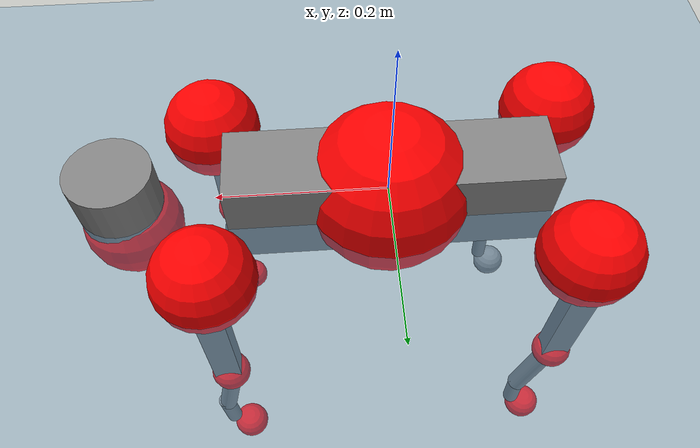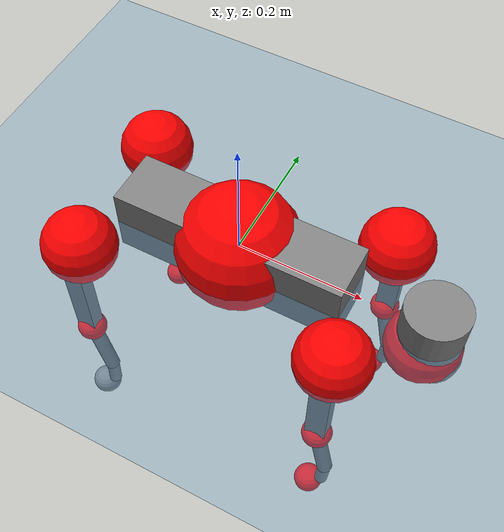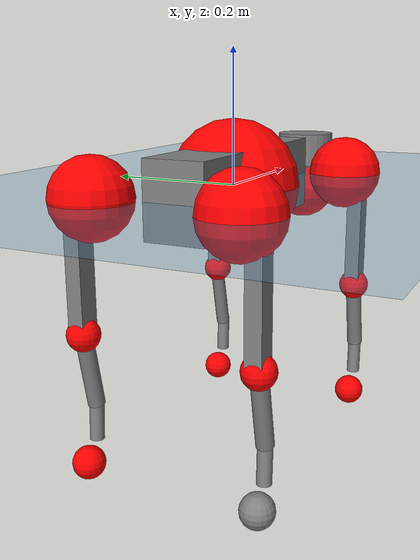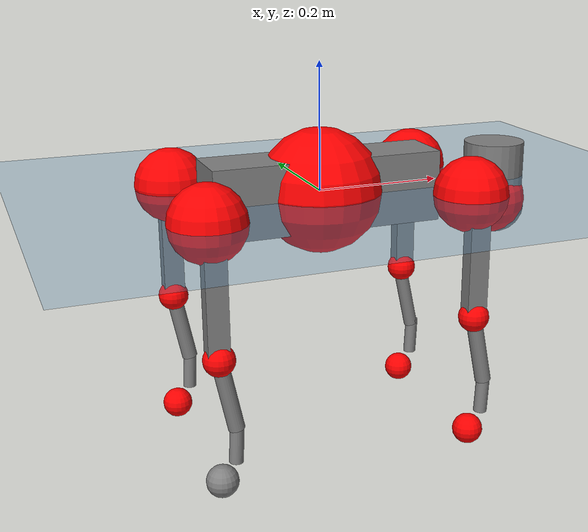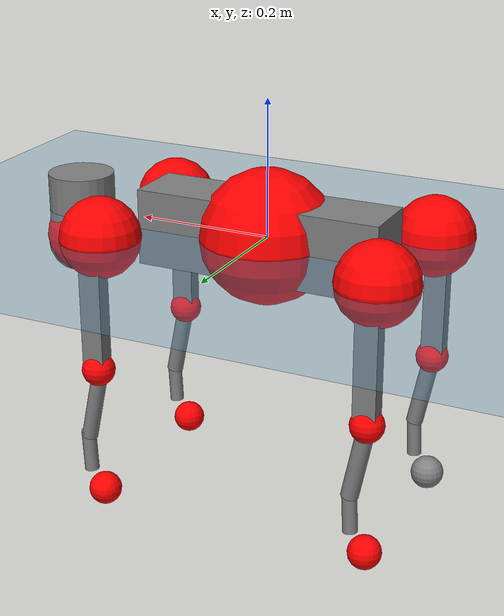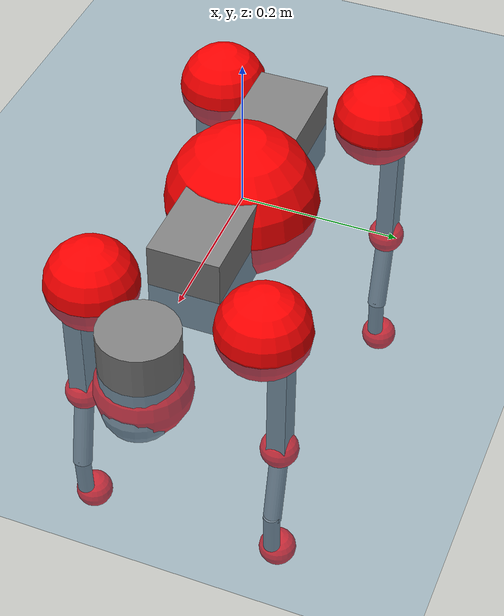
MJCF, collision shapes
<mujoco model="go2">
  <compiler angle="radian" assetdir="assets" balanceinertia="true" inertiafromgeom="false"/>

  <option timestep="0.005" density="1.2" viscosity="2e-05"/>

  <size nkey="1"/>

  <visual>
    <quality shadowsize="8192"/>
    <map shadowclip="0.5"/>
  </visual>

  <default>
    <default class="/">
      <geom contype="0" conaffinity="0" group="1" solref="-1000 -80"/>
      <site size="0.01 0.005 0.005" group="5"/>
      <general forcelimited="true" biastype="affine" gainprm="20" biasprm="0 -20 -0.5"/>
      <default class="go2">
        <joint armature="0.01" damping="0.01" frictionloss="0.2"/>
        <geom condim="1" margin="0.001"/>
        <default class="visual">
          <geom type="mesh" group="2"/>
        </default>
        <default class="collision">
          <geom group="3"/>
          <default class="foot">
            <geom size="0.022 0 0" condim="6" priority="1" friction="0.8 0.02 0.01" solimp="0.015 1 0.022"/>
          </default>
        </default>
        <default class="reward_collision_sphere">
          <geom group="5" rgba="1 0 0 1"/>
        </default>
      </default>
    </default>
  </default>

  <asset>
    <texture type="skybox" colorspace="auto" name="//unnamed_texture_0" builtin="gradient" rgb1="0.95 0.95 0.95" rgb2="0.95 0.95 0.95" width="100" height="600"/>
    <texture type="2d" colorspace="auto" name="texplane" builtin="checker" rgb1="0.345 0.575 0.748" rgb2="0.345 0.575 0.748" markrgb="1 1 1" width="512" height="512"/>
    <material name="MatPlane" class="/" texture="texplane" texuniform="true" texrepeat="2 2" specular="0.9"/>
    <material name="metal" class="/" rgba="0.9 0.95 0.95 1"/>
    <material name="black" class="/" rgba="0 0 0 1"/>
    <material name="white" class="/"/>
    <material name="gray" class="/" rgba="0.671705 0.692426 0.77427 1"/>
    <mesh name="base_0" class="/" file="base_0.obj"/>
    <mesh name="base_1" class="/" file="base_1.obj"/>
    <mesh name="base_2" class="/" file="base_2.obj"/>
    <mesh name="base_3" class="/" file="base_3.obj"/>
    <mesh name="base_4" class="/" file="base_4.obj"/>
    <mesh name="hip_0" class="/" file="hip_0.obj"/>
    <mesh name="hip_1" class="/" file="hip_1.obj"/>
    <mesh name="thigh_0" class="/" file="thigh_0.obj"/>
    <mesh name="thigh_1" class="/" file="thigh_1.obj"/>
    <mesh name="thigh_mirror_0" class="/" file="thigh_mirror_0.obj"/>
    <mesh name="thigh_mirror_1" class="/" file="thigh_mirror_1.obj"/>
    <mesh name="calf_0" class="/" file="calf_0.obj"/>
    <mesh name="calf_1" class="/" file="calf_1.obj"/>
    <mesh name="calf_mirror_0" class="/" file="calf_mirror_0.obj"/>
    <mesh name="calf_mirror_1" class="/" file="calf_mirror_1.obj"/>
    <mesh name="foot" class="/" file="foot.obj"/>
  </asset>

  <worldbody>
    <geom name="floor" class="/" size="100 100 0.125" type="plane" group="0" material="MatPlane"/>
    <light name="toplight_shadow" class="/" pos="0 0 5" dir="0.0990148 0.0990148 -0.990148" type="directional" ambient="0.04 0.04 0.04" diffuse="0.55 0.55 0.55" specular="0.12 0.12 0.12"/>
    <light name="toplight_fill" class="/" pos="0 0 5" dir="0.0990148 0.0990148 -0.990148" type="directional" castshadow="false" ambient="0.04 0.04 0.04" diffuse="0.3 0.3 0.3" specular="0.08 0.08 0.08"/>
    <body name="trunk" childclass="go2" pos="0.000262332 -0.000654142 0.00104202" quat="1 0.000340491 2.65135e-05 -3.61329e-05">
      <inertial pos="0.0229215 -0.00242528 -0.00390499" quat="-0.000538676 0.713016 -0.00183185 0.701145" mass="6.36703" diaginertia="0.146413 0.0682334 0.0159355"/>
      <joint name="//unnamed_joint_0" type="free" armature="0" damping="0" frictionloss="0"/>
      <geom name="//unnamed_geom_1" class="visual" material="black" mesh="base_0"/>
      <geom name="//unnamed_geom_2" class="visual" material="black" mesh="base_1"/>
      <geom name="//unnamed_geom_3" class="visual" material="black" mesh="base_2"/>
      <geom name="//unnamed_geom_4" class="visual" material="white" mesh="base_3"/>
      <geom name="//unnamed_geom_5" class="visual" material="gray" mesh="base_4"/>
      <geom name="trunk_1" class="collision" size="0.183942 0.0457165 0.05574" type="box"/>
      <geom name="trunk_2" class="collision" size="0.0488947 0.0440052" pos="0.307215 0 0.00920014" type="cylinder"/>
      <geom name="trunk_3" class="collision" size="0.045961" pos="0.315839 0 -0.0552009"/>
      <geom name="//unnamed_geom_9" class="reward_collision_sphere" size="0.0977894"/>
      <geom name="//unnamed_geom_10" class="reward_collision_sphere" size="0.0586736" pos="0.301825 0 -0.0414006"/>
      <site name="imu" pos="-0.0297646 0.00253022 0.0414359" size="0.00977894"/>
      <camera name="track" pos="0 -1.87144 0" quat="0.707107 0.707107 0 0" mode="trackcom"/>
      <camera name="ego_camera" pos="0.33632 0 0.0414006" quat="-0.5 -0.5 0.5 0.5"/>
      <body name="FL_hip" pos="0.208148 0.0443526 0.000609657" quat="1 -3.2775e-05 -3.60838e-05 -5.07009e-05">
        <inertial pos="-0.00571205 0.000494197 0.000532942" quat="0.493705 0.491554 0.515152 0.499248" mass="0.629183" diaginertia="0.00126819 0.00042757 0.000312325"/>
        <joint name="FL_hip_joint" pos="0 0 0" axis="0.999994 0.0021886 0.00263859" stiffness="0.0152115" range="-1.04232 1.05634" armature="0.00943493" damping="0.0105666" frictionloss="0.198802"/>
        <geom name="//unnamed_geom_11" class="visual" material="metal" mesh="hip_0"/>
        <geom name="//unnamed_geom_12" class="visual" material="gray" mesh="hip_1"/>
        <geom name="//unnamed_geom_13" class="collision" size="0.0449831 0.0195579" pos="0 0.0748576 0" quat="0.707107 0.707107 0 0" type="cylinder"/>
        <geom name="//unnamed_geom_14" class="reward_collision_sphere" size="0.0586736" pos="0 0.0655004 0"/>
        <body name="FL_thigh" pos="0.000328037 0.0888645 0.000332402" quat="0.999999 -0.00122219 -0.000418535 -7.09609e-05">
          <inertial pos="-0.00474988 -0.0181768 -0.030409" quat="0.830461 0.0804697 -0.020342 0.550858" mass="1.0694" diaginertia="0.00840502 0.00430064 0.000576327"/>
          <joint name="FL_thigh_joint" pos="0 0 0" axis="-0.00780628 0.999945 -0.00707174" stiffness="0.00132934" range="-1.58255 3.44712" armature="0.0110066" damping="0.0064304" frictionloss="0.196228"/>
          <geom name="//unnamed_geom_15" class="visual" material="metal" mesh="thigh_0"/>
          <geom name="//unnamed_geom_16" class="visual" material="gray" mesh="thigh_1"/>
          <geom name="//unnamed_geom_17" class="collision" size="0.104146 0.0119792 0.0166242" pos="0 0 -0.0979815" quat="0.707107 0 0.707107 0" type="box"/>
          <body name="FL_calf" pos="-0.00143773 -0.000907704 -0.1955" quat="1 -5.91998e-05 -0.000227834 -0.000341341">
            <inertial pos="0.00483706 -0.000768279 -0.131053" quat="0.707609 0.003682 -0.00310399 0.706588" mass="0.221673" diaginertia="0.00215564 0.00107417 3.46587e-05"/>
            <joint name="FL_calf_joint" pos="0 0 0" axis="-0.00280821 0.999983 0.00514202" stiffness="0.00665291" range="-2.67404 -0.805603" armature="0.00984336" damping="0" frictionloss="0.185526"/>
            <geom name="//unnamed_geom_18" class="visual" material="gray" mesh="calf_0"/>
            <geom name="//unnamed_geom_19" class="visual" material="black" mesh="calf_1"/>
            <geom name="FL_calf0" class="collision" size="0.0117347 0.0586736" pos="0.00862358 0 -0.0552009" quat="0.994493 0 -0.104807 0" type="cylinder"/>
            <geom name="//unnamed_geom_21" class="collision" size="0.0107568 0.0317816" pos="0.021559 0 -0.136162" quat="0.999688 0 0.0249974 0" type="cylinder"/>
            <geom name="//unnamed_geom_22" class="visual" pos="0 0 -0.195963" quat="1 0 0 0" material="black" mesh="foot"/>
            <geom name="FL_foot" class="foot" size="0.0178639" pos="-0.0021559 0 -0.195963"/>
            <geom name="//unnamed_geom_24" class="reward_collision_sphere" size="0.0244473"/>
            <geom name="//unnamed_geom_25" class="reward_collision_sphere" size="0.0244473" pos="-0.0021559 0 -0.195963"/>
            <site name="FL_foot" class="foot" pos="-0.0021559 0 -0.195963" size="0.00977894"/>
          </body>
        </body>
      </body>
      <body name="FR_hip" pos="0.206383 -0.0425418 -0.00123607" quat="1 1.11085e-05 -1.69716e-06 6.70113e-05">
        <inertial pos="-0.00609705 -0.0027048 0.000739612" quat="0.498096 0.51409 0.493745 0.493789" mass="0.640203" diaginertia="0.00126901 0.000427217 0.000311636"/>
        <joint name="FR_hip_joint" pos="0 0 0" axis="0.999999 0.000615718 0.000933105" range="-1.04615 1.0867" armature="0.0101156" damping="0.0130938" frictionloss="0.185836"/>
        <geom name="//unnamed_geom_26" class="visual" pos="0 1.36818e-10 5.86841e-09" quat="4.63268e-05 1 0 0" material="metal" mesh="hip_0"/>
        <geom name="//unnamed_geom_27" class="visual" pos="0 2.21799e-10 -1.45148e-08" quat="4.63268e-05 1 0 0" material="gray" mesh="hip_1"/>
        <geom name="//unnamed_geom_28" class="collision" size="0.0449831 0.0195579" pos="0 -0.0748576 0" quat="0.707107 0.707107 0 0" type="cylinder"/>
        <geom name="//unnamed_geom_29" class="reward_collision_sphere" size="0.0586736" pos="0 -0.0655004 0"/>
        <body name="FR_thigh" pos="0.000651176 -0.0890883 -0.000161997" quat="1 2.26905e-05 0.000237433 2.608e-05">
          <inertial pos="-0.00421537 0.020567 -0.0277093" quat="0.548677 -0.0199893 0.0885783 0.831088" mass="1.06087" diaginertia="0.00856624 0.00417705 0.000577468"/>
          <joint name="FR_thigh_joint" pos="0 0 0" axis="0.0043734 -0.999987 -0.00250532" stiffness="0.011422" range="-3.49613 1.54993" armature="0.00882954" damping="0.0218078" frictionloss="0.192633"/>
          <geom name="//unnamed_geom_30" class="visual" material="metal" mesh="thigh_mirror_0"/>
          <geom name="//unnamed_geom_31" class="visual" material="gray" mesh="thigh_mirror_1"/>
          <geom name="//unnamed_geom_32" class="collision" size="0.104146 0.0119792 0.0166242" pos="0 0 -0.0979815" quat="0.707107 0 0.707107 0" type="box"/>
          <body name="FR_calf" pos="0.000514657 -5.32846e-05 -0.193302" quat="1 -0.000251592 -0.000130106 -0.00016817">
            <inertial pos="0.0064125 0.00137697 -0.130468" quat="0.702515 -0.00637516 0.00490826 0.711623" mass="0.232987" diaginertia="0.00226277 0.00109516 3.60228e-05"/>
            <joint name="FR_calf_joint" pos="0 0 0" axis="-0.00325204 -0.999981 -0.00530084" range="0.815662 2.70338" armature="0.00984501" damping="0" frictionloss="0.205248"/>
            <geom name="//unnamed_geom_33" class="visual" material="gray" mesh="calf_mirror_0"/>
            <geom name="//unnamed_geom_34" class="visual" material="black" mesh="calf_mirror_1"/>
            <geom name="FR_calf0" class="collision" size="0.0127126 0.0586736" pos="0.0107795 0 -0.0552009" quat="0.995004 0 -0.0998334 0" type="cylinder"/>
            <geom name="//unnamed_geom_36" class="collision" size="0.0107568 0.0317816" pos="0.021559 0 -0.136162" quat="0.999688 0 0.0249974 0" type="cylinder"/>
            <geom name="//unnamed_geom_37" class="visual" pos="0 0 -0.195963" quat="1 0 0 0" material="black" mesh="foot"/>
            <geom name="FR_foot" class="foot" size="0.0202719" pos="-0.0021559 0 -0.195963"/>
            <geom name="//unnamed_geom_39" class="reward_collision_sphere" size="0.0244473"/>
            <geom name="//unnamed_geom_40" class="reward_collision_sphere" size="0.0244473" pos="-0.0021559 0 -0.195963"/>
            <site name="FR_foot" class="foot" pos="-0.0021559 0 -0.195963" size="0.00977894"/>
          </body>
        </body>
      </body>
      <body name="RL_hip" pos="-0.209037 0.0430009 0.00204614" quat="1 -0.000411205 8.1105e-05 -0.000134389">
        <inertial pos="0.00522942 0.00253637 0.000549703" quat="0.502892 0.498644 0.499878 0.498573" mass="0.621015" diaginertia="0.00130976 0.000434855 0.000319971"/>
        <joint name="RL_hip_joint" pos="0 0 0" axis="-0.999837 -0.0178067 -0.00305167" stiffness="0.0106226" range="-1.01066 1.0664" armature="0.0101122" damping="0.014147" frictionloss="0.208559"/>
        <geom name="//unnamed_geom_41" class="visual" pos="-1.37585e-09 0 -2.69699e-07" quat="4.63268e-05 0 1 0" material="metal" mesh="hip_0"/>
        <geom name="//unnamed_geom_42" class="visual" pos="-2.23042e-09 0 -2.39185e-07" quat="4.63268e-05 0 1 0" material="gray" mesh="hip_1"/>
        <geom name="//unnamed_geom_43" class="collision" size="0.0449831 0.0195579" pos="0 0.0748576 0" quat="0.707107 0.707107 0 0" type="cylinder"/>
        <geom name="//unnamed_geom_44" class="reward_collision_sphere" size="0.0586736" pos="0 0.0655004 0"/>
        <body name="RL_thigh" pos="-0.000163086 0.0899713 0.00124763" quat="0.999999 0.000179949 0.00110925 0.00024367">
          <inertial pos="-0.00404891 -0.0180585 -0.0310243" quat="0.827507 0.0832957 -0.0151661 0.555035" mass="1.04608" diaginertia="0.00868954 0.00419733 0.000595085"/>
          <joint name="RL_thigh_joint" pos="0 0 0" axis="-0.00505916 0.99995 -0.00857818" stiffness="0.00424102" range="-0.527016 4.53444" armature="0.010053" damping="0.016543" frictionloss="0.196322"/>
          <geom name="//unnamed_geom_45" class="visual" material="metal" mesh="thigh_0"/>
          <geom name="//unnamed_geom_46" class="visual" material="gray" mesh="thigh_1"/>
          <geom name="//unnamed_geom_47" class="collision" size="0.104146 0.0119792 0.0166242" pos="0 0 -0.0979815" quat="0.707107 0 0.707107 0" type="box"/>
          <body name="RL_calf" pos="-0.00078107 -0.00104044 -0.194615" quat="1 1.38007e-05 4.6105e-06 -5.03223e-06">
            <inertial pos="0.00689898 0.00131058 -0.130296" quat="0.712127 0.00304653 -0.00358341 0.702035" mass="0.228067" diaginertia="0.00213697 0.00103292 3.43331e-05"/>
            <joint name="RL_calf_joint" pos="0 0 0" axis="0.00482483 0.999903 -0.0130804" stiffness="0.00989759" range="-2.67237 -0.843185" armature="0.0110094" damping="0.000771417" frictionloss="0.191212"/>
            <geom name="//unnamed_geom_48" class="visual" material="gray" mesh="calf_0"/>
            <geom name="//unnamed_geom_49" class="visual" material="black" mesh="calf_1"/>
            <geom name="RL_calf0" class="collision" size="0.0127126 0.0586736" pos="0.0107795 0 -0.0552009" quat="0.995004 0 -0.0998334 0" type="cylinder"/>
            <geom name="//unnamed_geom_51" class="collision" size="0.0107568 0.0317816" pos="0.021559 0 -0.136162" quat="0.999688 0 0.0249974 0" type="cylinder"/>
            <geom name="//unnamed_geom_52" class="visual" pos="0 0 -0.195963" quat="1 0 0 0" material="black" mesh="foot"/>
            <geom name="RL_foot" class="foot" size="0.0194338" pos="-0.0021559 0 -0.195963"/>
            <geom name="//unnamed_geom_54" class="reward_collision_sphere" size="0.0244473"/>
            <geom name="//unnamed_geom_55" class="reward_collision_sphere" size="0.0244473" pos="-0.0021559 0 -0.195963"/>
            <site name="RL_foot" class="foot" pos="-0.0021559 0 -0.195963" size="0.00977894"/>
          </body>
        </body>
      </body>
      <body name="RR_hip" pos="-0.210672 -0.0445168 -0.00197291" quat="0.999999 -0.000733254 -0.00018449 0.00102427">
        <inertial pos="0.00621846 -0.000866223 -0.000414989" quat="0.498313 0.496268 0.498919 0.50644" mass="0.637768" diaginertia="0.00129472 0.000424148 0.000328187"/>
        <joint name="RR_hip_joint" pos="0 0 0" axis="-0.999998 -0.00168337 0.000611016" stiffness="0.00536218" range="-1.03771 1.06051" armature="0.0108526" damping="0.00721481" frictionloss="0.198231"/>
        <geom name="//unnamed_geom_56" class="visual" pos="1.37093e-09 1.36818e-10 -2.75567e-07" quat="2.14617e-09 4.63268e-05 4.63268e-05 -1" material="metal" mesh="hip_0"/>
        <geom name="//unnamed_geom_57" class="visual" pos="2.2426e-09 2.21799e-10 -2.2467e-07" quat="2.14617e-09 4.63268e-05 4.63268e-05 -1" material="gray" mesh="hip_1"/>
        <geom name="//unnamed_geom_58" class="collision" size="0.0449831 0.0195579" pos="0 -0.0748576 0" quat="0.707107 0.707107 0 0" type="cylinder"/>
        <geom name="//unnamed_geom_59" class="reward_collision_sphere" size="0.0586736" pos="0 -0.0655004 0"/>
        <body name="RR_thigh" pos="-4.8757e-05 -0.0885888 -0.000537044" quat="1 -2.41148e-05 -0.00043728 -0.000423562">
          <inertial pos="-0.00370976 0.0197535 -0.0303187" quat="0.551549 -0.0197472 0.0847488 0.829591" mass="1.05311" diaginertia="0.0085363 0.00420289 0.000569595"/>
          <joint name="RR_thigh_joint" pos="0 0 0" axis="-0.00436924 -0.999981 -0.00445076" stiffness="0.00467186" range="-4.52975 0.575416" armature="0.00858827" damping="0.0200226" frictionloss="0.190166"/>
          <geom name="//unnamed_geom_60" class="visual" material="metal" mesh="thigh_mirror_0"/>
          <geom name="//unnamed_geom_61" class="visual" material="gray" mesh="thigh_mirror_1"/>
          <geom name="//unnamed_geom_62" class="collision" size="0.104146 0.0119792 0.0166242" pos="0 0 -0.0979815" quat="0.707107 0 0.707107 0" type="box"/>
          <body name="RR_calf" pos="0.00194796 -0.000604847 -0.197072" quat="1 -2.52796e-06 6.25237e-05 0.000132271">
            <inertial pos="0.00681091 0.00100445 -0.130482" quat="0.703485 -0.00429329 0.00156543 0.710696" mass="0.227891" diaginertia="0.00214482 0.00104529 3.48762e-05"/>
            <joint name="RR_calf_joint" pos="0 0 0" axis="-0.000362194 -1 -0.000771684" range="0.878158 2.71635" armature="0.00947345" damping="0.0130255" frictionloss="0.194291"/>
            <geom name="//unnamed_geom_63" class="visual" material="gray" mesh="calf_mirror_0"/>
            <geom name="//unnamed_geom_64" class="visual" material="black" mesh="calf_mirror_1"/>
            <geom name="RR_calf0" class="collision" size="0.0127126 0.0586736" pos="0.0107795 0 -0.0552009" quat="0.995004 0 -0.0998334 0" type="cylinder"/>
            <geom name="//unnamed_geom_66" class="collision" size="0.0107568 0.0317816" pos="0.021559 0 -0.136162" quat="0.999688 0 0.0249974 0" type="cylinder"/>
            <geom name="//unnamed_geom_67" class="visual" pos="0 0 -0.195963" quat="1 0 0 0" material="black" mesh="foot"/>
            <geom name="RR_foot" class="foot" size="0.0250586" pos="-0.0021559 0 -0.195963"/>
            <geom name="//unnamed_geom_69" class="reward_collision_sphere" size="0.0244473"/>
            <geom name="//unnamed_geom_70" class="reward_collision_sphere" size="0.0244473" pos="-0.0021559 0 -0.195963"/>
            <site name="RR_foot" class="foot" pos="-0.0021559 0 -0.195963" size="0.00977894"/>
          </body>
        </body>
      </body>
    </body>
  </worldbody>

  <contact>
    <pair class="/" geom1="floor" geom2="FL_foot" name="//unnamed_contact_0"/>
    <pair class="/" geom1="floor" geom2="FR_foot" name="//unnamed_contact_1"/>
    <pair class="/" geom1="floor" geom2="RL_foot" name="//unnamed_contact_2"/>
    <pair class="/" geom1="floor" geom2="RR_foot" name="//unnamed_contact_3"/>
  </contact>

  <actuator>
    <general name="FL_hip" class="/" joint="FL_hip_joint" forcerange="-22.6079 22.6079" gainprm="19.7414" biasprm="0 -19.7414 -0.494859"/>
    <general name="FL_thigh" class="/" joint="FL_thigh_joint" forcerange="-23.4063 23.4063" gainprm="19.7414" biasprm="0 -19.7414 -0.494859"/>
    <general name="FL_calf" class="/" joint="FL_calf_joint" forcerange="-45.0803 45.0803" gainprm="19.7414" biasprm="0 -19.7414 -0.494859"/>
    <general name="FR_hip" class="/" joint="FR_hip_joint" forcerange="-23.4401 23.4401" gainprm="19.7414" biasprm="0 -19.7414 -0.494859"/>
    <general name="FR_thigh" class="/" joint="FR_thigh_joint" forcerange="-22.8743 22.8743" gainprm="19.7414" biasprm="0 -19.7414 -0.494859"/>
    <general name="FR_calf" class="/" joint="FR_calf_joint" forcerange="-42.2752 42.2752" gainprm="19.7414" biasprm="0 -19.7414 -0.494859"/>
    <general name="RL_hip" class="/" joint="RL_hip_joint" forcerange="-24.0837 24.0837" gainprm="19.7414" biasprm="0 -19.7414 -0.494859"/>
    <general name="RL_thigh" class="/" joint="RL_thigh_joint" forcerange="-23.2624 23.2624" gainprm="19.7414" biasprm="0 -19.7414 -0.494859"/>
    <general name="RL_calf" class="/" joint="RL_calf_joint" forcerange="-42.497 42.497" gainprm="19.7414" biasprm="0 -19.7414 -0.494859"/>
    <general name="RR_hip" class="/" joint="RR_hip_joint" forcerange="-23.6018 23.6018" gainprm="19.7414" biasprm="0 -19.7414 -0.494859"/>
    <general name="RR_thigh" class="/" joint="RR_thigh_joint" forcerange="-22.3315 22.3315" gainprm="19.7414" biasprm="0 -19.7414 -0.494859"/>
    <general name="RR_calf" class="/" joint="RR_calf_joint" forcerange="-48.1521 48.1521" gainprm="19.7414" biasprm="0 -19.7414 -0.494859"/>
  </actuator>

  <sensor>
    <gyro site="imu" name="imu_angular_velocity"/>
    <velocimeter site="imu" name="imu_linear_velocity"/>
    <framelinvel objtype="site" objname="FL_foot" name="FL_foot_global_linear_velocity"/>
    <framelinvel objtype="site" objname="FR_foot" name="FR_foot_global_linear_velocity"/>
    <framelinvel objtype="site" objname="RL_foot" name="RL_foot_global_linear_velocity"/>
    <framelinvel objtype="site" objname="RR_foot" name="RR_foot_global_linear_velocity"/>
  </sensor>

  <keyframe>
    <key name="home" qpos="0 0 0.325 1 0 0 0 0.1 0.8 -1.5 -0.1 -0.8 1.5 -0.1 0.8 -1.5 0.1 -0.8 1.5"/>
  </keyframe>
</mujoco>
